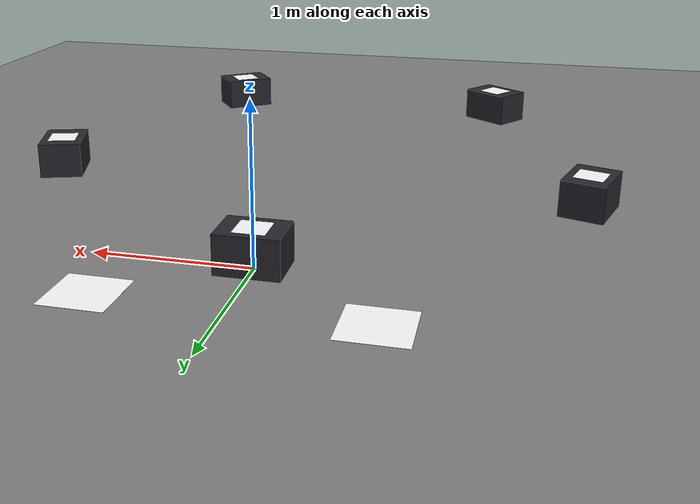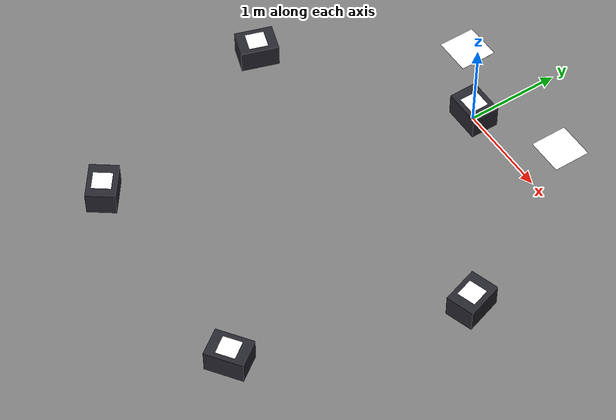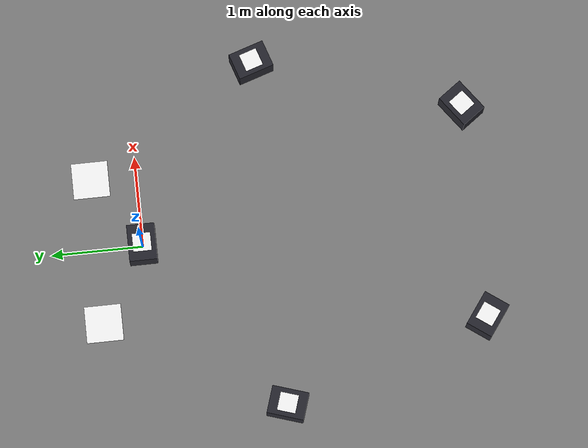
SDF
<?xml version="1.0"?>
<sdf version="1.9">
  <world name="convoy">

    <!-- Required systems. Without Sensors NO camera image topic is ever advertised;
         without Physics the VelocityControl convoy never integrates. -->
    <plugin filename="gz-sim-physics-system"           name="gz::sim::systems::Physics"/>
    <plugin filename="gz-sim-user-commands-system"     name="gz::sim::systems::UserCommands"/>
    <plugin filename="gz-sim-scene-broadcaster-system" name="gz::sim::systems::SceneBroadcaster"/>
    <plugin filename="gz-sim-sensors-system"           name="gz::sim::systems::Sensors">
      <render_engine>ogre2</render_engine>
    </plugin>

    <scene>
      <ambient>0.4 0.4 0.4 1</ambient>
      <background>0.7 0.7 0.75 1</background>
      <grid>false</grid>
    </scene>

    <light type="directional" name="sun">
      <cast_shadows>false</cast_shadows>
      <pose>0 0 10 0 0 0</pose>
      <diffuse>1 1 1 1</diffuse>
      <specular>0.3 0.3 0.3 1</specular>
      <direction>0.2 0.2 -1.0</direction>
    </light>

    <model name="ground_plane">
      <static>true</static>
      <link name="link">
        <collision name="col">
          <geometry><plane><normal>0 0 1</normal><size>100 100</size></plane></geometry>
        </collision>
        <visual name="vis">
          <geometry><plane><normal>0 0 1</normal><size>100 100</size></plane></geometry>
          <material><diffuse>0.5 0.5 0.5 1</diffuse><specular>0.1 0.1 0.1 1</specular></material>
        </visual>
      </link>
    </model>

    <!-- 5 convoy robots, phase-offset around the circle (center (0,-2), R=2, CCW).
         Poses computed by sim/gen_markers route math; robot 7 starts at the origin nadir. -->
    <include><uri>model://convoy_robot_7</uri> <name>convoy_robot_7</name> <pose>0 0 0 0 0 3.1416</pose></include>
    <include><uri>model://convoy_robot_11</uri><name>convoy_robot_11</name><pose>-1.902 -1.382 0 0 0 4.3982</pose></include>
    <include><uri>model://convoy_robot_23</uri><name>convoy_robot_23</name><pose>-1.176 -3.618 0 0 0 5.6549</pose></include>
    <include><uri>model://convoy_robot_42</uri><name>convoy_robot_42</name><pose>1.176 -3.618 0 0 0 0.6283</pose></include>
    <include><uri>model://convoy_robot_88</uri><name>convoy_robot_88</name><pose>1.902 -1.382 0 0 0 1.8850</pose></include>

    <!-- 2 landing-pad markers, static, just north of the route (inside all 3 FOVs). -->
    <include><uri>model://pad_100</uri><name>pad_100</name><pose>0.8 0.5 0 0 0 0</pose></include>
    <include><uri>model://pad_101</uri><name>pad_101</name><pose>-0.8 0.5 0 0 0 0</pose></include>

    <include><uri>model://mono_cam_640</uri><name>cam_band_120</name><pose>0 0 1.2 0 1.5707 0</pose></include>
    <include><uri>model://mono_cam_640</uri><name>cam_band_170</name><pose>0 0 1.7 0 1.5707 0</pose></include>
    <include><uri>model://mono_cam_640</uri><name>cam_band_220</name><pose>0 0 2.2 0 1.5707 0</pose></include>

  </world>
</sdf>

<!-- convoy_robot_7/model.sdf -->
<sdf version="1.9">
  <model name="convoy_robot_7">
    <!-- SIM-3 convoy robot carrying aruco id=7 (20cm). Generated by sim/gen_markers.py. -->
    <link name="base_link">
      <pose>0 0 0.1300 0 0 0</pose>
      <inertial>
        <mass>5.0</mass>
        <inertia><ixx>0.08</ixx><iyy>0.12</iyy><izz>0.15</izz><ixy>0</ixy><ixz>0</ixz><iyz>0</iyz></inertia>
      </inertial>
      <collision name="chassis_col">
        <geometry><box><size>0.4 0.3 0.25</size></box></geometry>
      </collision>
      <visual name="chassis_vis">
        <geometry><box><size>0.4 0.3 0.25</size></box></geometry>
        <material><diffuse>0.15 0.15 0.18 1</diffuse></material>
      </visual>
      <visual name="marker_top">
        <pose>0 0 0.1255 0 0 0</pose>
        <geometry>
          <plane><normal>0 0 1</normal><size>0.2000 0.2000</size></plane>
        </geometry>
        <material>
          <diffuse>1 1 1 1</diffuse>
          <specular>0 0 0 1</specular>
          <pbr>
            <metal>
              <albedo_map>model://convoy_robot_7/materials/textures/convoy_robot_7.png</albedo_map>
              <metalness>0.0</metalness>
              <roughness>1.0</roughness>
            </metal>
          </pbr>
        </material>
      </visual>
    </link>
    <plugin filename="gz-sim-velocity-control-system"
            name="gz::sim::systems::VelocityControl">
      <topic>/model/convoy_robot_7/cmd_vel</topic>
      <!-- hold still (no gravity fall) until the rclpy driver sends cmd_vel;
           linear is body-frame, so constant linear.x + angular.z => a circle. -->
      <initial_linear>0 0 0</initial_linear>
      <initial_angular>0 0 0</initial_angular>
    </plugin>
  </model>
</sdf>

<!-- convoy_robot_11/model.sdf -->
<sdf version="1.9">
  <model name="convoy_robot_11">
    <!-- SIM-3 convoy robot carrying aruco id=11 (20cm). Generated by sim/gen_markers.py. -->
    <link name="base_link">
      <pose>0 0 0.1300 0 0 0</pose>
      <inertial>
        <mass>5.0</mass>
        <inertia><ixx>0.08</ixx><iyy>0.12</iyy><izz>0.15</izz><ixy>0</ixy><ixz>0</ixz><iyz>0</iyz></inertia>
      </inertial>
      <collision name="chassis_col">
        <geometry><box><size>0.4 0.3 0.25</size></box></geometry>
      </collision>
      <visual name="chassis_vis">
        <geometry><box><size>0.4 0.3 0.25</size></box></geometry>
        <material><diffuse>0.15 0.15 0.18 1</diffuse></material>
      </visual>
      <visual name="marker_top">
        <pose>0 0 0.1255 0 0 0</pose>
        <geometry>
          <plane><normal>0 0 1</normal><size>0.2000 0.2000</size></plane>
        </geometry>
        <material>
          <diffuse>1 1 1 1</diffuse>
          <specular>0 0 0 1</specular>
          <pbr>
            <metal>
              <albedo_map>model://convoy_robot_11/materials/textures/convoy_robot_11.png</albedo_map>
              <metalness>0.0</metalness>
              <roughness>1.0</roughness>
            </metal>
          </pbr>
        </material>
      </visual>
    </link>
    <plugin filename="gz-sim-velocity-control-system"
            name="gz::sim::systems::VelocityControl">
      <topic>/model/convoy_robot_11/cmd_vel</topic>
      <!-- hold still (no gravity fall) until the rclpy driver sends cmd_vel;
           linear is body-frame, so constant linear.x + angular.z => a circle. -->
      <initial_linear>0 0 0</initial_linear>
      <initial_angular>0 0 0</initial_angular>
    </plugin>
  </model>
</sdf>

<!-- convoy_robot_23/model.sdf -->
<sdf version="1.9">
  <model name="convoy_robot_23">
    <!-- SIM-3 convoy robot carrying aruco id=23 (20cm). Generated by sim/gen_markers.py. -->
    <link name="base_link">
      <pose>0 0 0.1300 0 0 0</pose>
      <inertial>
        <mass>5.0</mass>
        <inertia><ixx>0.08</ixx><iyy>0.12</iyy><izz>0.15</izz><ixy>0</ixy><ixz>0</ixz><iyz>0</iyz></inertia>
      </inertial>
      <collision name="chassis_col">
        <geometry><box><size>0.4 0.3 0.25</size></box></geometry>
      </collision>
      <visual name="chassis_vis">
        <geometry><box><size>0.4 0.3 0.25</size></box></geometry>
        <material><diffuse>0.15 0.15 0.18 1</diffuse></material>
      </visual>
      <visual name="marker_top">
        <pose>0 0 0.1255 0 0 0</pose>
        <geometry>
          <plane><normal>0 0 1</normal><size>0.2000 0.2000</size></plane>
        </geometry>
        <material>
          <diffuse>1 1 1 1</diffuse>
          <specular>0 0 0 1</specular>
          <pbr>
            <metal>
              <albedo_map>model://convoy_robot_23/materials/textures/convoy_robot_23.png</albedo_map>
              <metalness>0.0</metalness>
              <roughness>1.0</roughness>
            </metal>
          </pbr>
        </material>
      </visual>
    </link>
    <plugin filename="gz-sim-velocity-control-system"
            name="gz::sim::systems::VelocityControl">
      <topic>/model/convoy_robot_23/cmd_vel</topic>
      <!-- hold still (no gravity fall) until the rclpy driver sends cmd_vel;
           linear is body-frame, so constant linear.x + angular.z => a circle. -->
      <initial_linear>0 0 0</initial_linear>
      <initial_angular>0 0 0</initial_angular>
    </plugin>
  </model>
</sdf>

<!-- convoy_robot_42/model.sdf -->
<sdf version="1.9">
  <model name="convoy_robot_42">
    <!-- SIM-3 convoy robot carrying aruco id=42 (20cm). Generated by sim/gen_markers.py. -->
    <link name="base_link">
      <pose>0 0 0.1300 0 0 0</pose>
      <inertial>
        <mass>5.0</mass>
        <inertia><ixx>0.08</ixx><iyy>0.12</iyy><izz>0.15</izz><ixy>0</ixy><ixz>0</ixz><iyz>0</iyz></inertia>
      </inertial>
      <collision name="chassis_col">
        <geometry><box><size>0.4 0.3 0.25</size></box></geometry>
      </collision>
      <visual name="chassis_vis">
        <geometry><box><size>0.4 0.3 0.25</size></box></geometry>
        <material><diffuse>0.15 0.15 0.18 1</diffuse></material>
      </visual>
      <visual name="marker_top">
        <pose>0 0 0.1255 0 0 0</pose>
        <geometry>
          <plane><normal>0 0 1</normal><size>0.2000 0.2000</size></plane>
        </geometry>
        <material>
          <diffuse>1 1 1 1</diffuse>
          <specular>0 0 0 1</specular>
          <pbr>
            <metal>
              <albedo_map>model://convoy_robot_42/materials/textures/convoy_robot_42.png</albedo_map>
              <metalness>0.0</metalness>
              <roughness>1.0</roughness>
            </metal>
          </pbr>
        </material>
      </visual>
    </link>
    <plugin filename="gz-sim-velocity-control-system"
            name="gz::sim::systems::VelocityControl">
      <topic>/model/convoy_robot_42/cmd_vel</topic>
      <!-- hold still (no gravity fall) until the rclpy driver sends cmd_vel;
           linear is body-frame, so constant linear.x + angular.z => a circle. -->
      <initial_linear>0 0 0</initial_linear>
      <initial_angular>0 0 0</initial_angular>
    </plugin>
  </model>
</sdf>

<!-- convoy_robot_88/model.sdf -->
<sdf version="1.9">
  <model name="convoy_robot_88">
    <!-- SIM-3 convoy robot carrying aruco id=88 (20cm). Generated by sim/gen_markers.py. -->
    <link name="base_link">
      <pose>0 0 0.1300 0 0 0</pose>
      <inertial>
        <mass>5.0</mass>
        <inertia><ixx>0.08</ixx><iyy>0.12</iyy><izz>0.15</izz><ixy>0</ixy><ixz>0</ixz><iyz>0</iyz></inertia>
      </inertial>
      <collision name="chassis_col">
        <geometry><box><size>0.4 0.3 0.25</size></box></geometry>
      </collision>
      <visual name="chassis_vis">
        <geometry><box><size>0.4 0.3 0.25</size></box></geometry>
        <material><diffuse>0.15 0.15 0.18 1</diffuse></material>
      </visual>
      <visual name="marker_top">
        <pose>0 0 0.1255 0 0 0</pose>
        <geometry>
          <plane><normal>0 0 1</normal><size>0.2000 0.2000</size></plane>
        </geometry>
        <material>
          <diffuse>1 1 1 1</diffuse>
          <specular>0 0 0 1</specular>
          <pbr>
            <metal>
              <albedo_map>model://convoy_robot_88/materials/textures/convoy_robot_88.png</albedo_map>
              <metalness>0.0</metalness>
              <roughness>1.0</roughness>
            </metal>
          </pbr>
        </material>
      </visual>
    </link>
    <plugin filename="gz-sim-velocity-control-system"
            name="gz::sim::systems::VelocityControl">
      <topic>/model/convoy_robot_88/cmd_vel</topic>
      <!-- hold still (no gravity fall) until the rclpy driver sends cmd_vel;
           linear is body-frame, so constant linear.x + angular.z => a circle. -->
      <initial_linear>0 0 0</initial_linear>
      <initial_angular>0 0 0</initial_angular>
    </plugin>
  </model>
</sdf>

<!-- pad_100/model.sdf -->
<sdf version="1.9">
  <model name="pad_100">
    <!-- SIM-3 aruco id=100, 40cm static plane. Generated by sim/gen_markers.py. -->
    <static>true</static>
    <link name="link">
      <pose>0 0 0.001 0 0 0</pose>
      <visual name="marker_visual">
        <geometry>
          <plane><normal>0 0 1</normal><size>0.4000 0.4000</size></plane>
        </geometry>
        <material>
          <diffuse>1 1 1 1</diffuse>
          <specular>0 0 0 1</specular>
          <pbr>
            <metal>
              <albedo_map>model://pad_100/materials/textures/pad_100.png</albedo_map>
              <metalness>0.0</metalness>
              <roughness>1.0</roughness>
            </metal>
          </pbr>
        </material>
      </visual>
    </link>
  </model>
</sdf>

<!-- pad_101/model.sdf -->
<sdf version="1.9">
  <model name="pad_101">
    <!-- SIM-3 aruco id=101, 40cm static plane. Generated by sim/gen_markers.py. -->
    <static>true</static>
    <link name="link">
      <pose>0 0 0.001 0 0 0</pose>
      <visual name="marker_visual">
        <geometry>
          <plane><normal>0 0 1</normal><size>0.4000 0.4000</size></plane>
        </geometry>
        <material>
          <diffuse>1 1 1 1</diffuse>
          <specular>0 0 0 1</specular>
          <pbr>
            <metal>
              <albedo_map>model://pad_101/materials/textures/pad_101.png</albedo_map>
              <metalness>0.0</metalness>
              <roughness>1.0</roughness>
            </metal>
          </pbr>
        </material>
      </visual>
    </link>
  </model>
</sdf>

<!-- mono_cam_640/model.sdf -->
<sdf version="1.9">
  <model name="mono_cam_640">
    <static>true</static>
    <link name="camera_link">
      <pose>0 0 0 0 0 0</pose>
      <sensor name="camera" type="camera">
        <camera>
          <horizontal_fov>1.74</horizontal_fov>
          <image>
            <width>640</width>
            <height>480</height>
            <format>R8G8B8</format>
          </image>
          <clip>
            <near>0.05</near>
            <far>50.0</far>
          </clip>
        </camera>
        <always_on>1</always_on>
        <!-- 15 Hz (not 30): 4 simultaneous renders on a 4-vCPU VM; 15 Hz is ample for
             marker detection and keeps RTF/first-frame warmup healthy (measured). -->
        <update_rate>15</update_rate>
        <visualize>true</visualize>
      </sensor>
    </link>
  </model>
</sdf>
